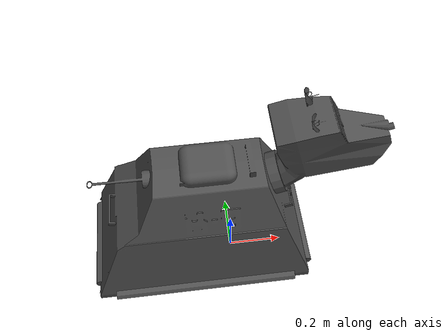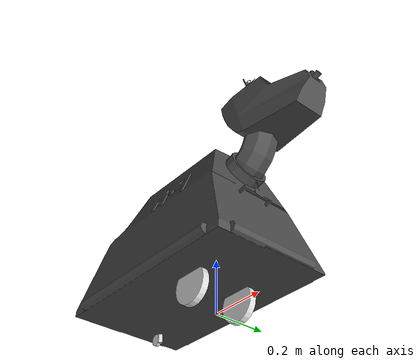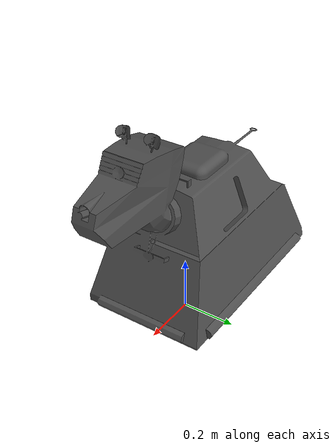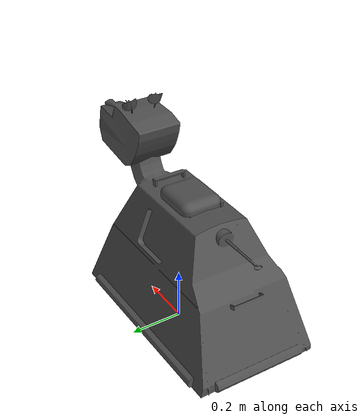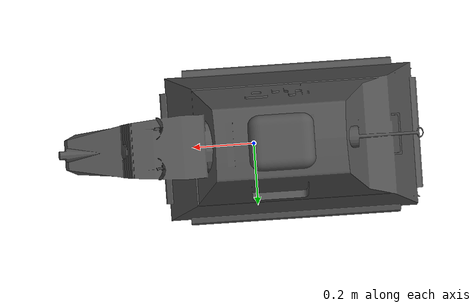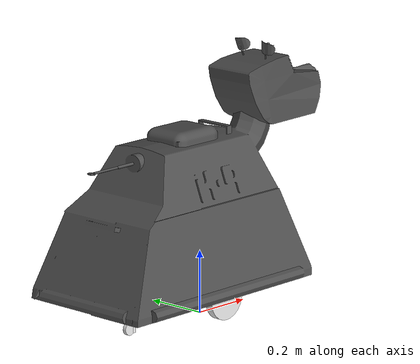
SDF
<?xml version='1.0' encoding='utf-8'?>
<sdf version="1.11">
  <model name="k9_robot">
    <link name="base_footprint">
      <inertial>
        <pose>-0.01793581616481775 8.5911424127219048e-21 0.2225694770206022 0 0 0</pose>
        <mass>25.239999999999998</mass>
        <inertia>
          <ixx>1.0186345969690971</ixx>
          <ixy>-3.8892101702392073e-21</ixy>
          <ixz>-0.018844349247226621</ixz>
          <iyy>2.4546026529912832</iyy>
          <iyz>3.3215504353186073e-20</iyz>
          <izz>2.048690056022187</izz>
        </inertia>
      </inertial>
      <collision name="base_footprint_fixed_joint_lump__base_link_collision">
        <pose>-0.11899999999999999 0 0.35438999999999998 0 0 0</pose>
        <geometry>
          <box>
            <size>0.89000000000000001 0.48999999999999999 0.48999999999999999</size>
          </box>
        </geometry>
      </collision>
      <collision name="base_footprint_fixed_joint_lump__base_link_collision_1">
        <pose>0.33600000000000002 0 0.68189 0 0 0</pose>
        <geometry>
          <box>
            <size>0.42999999999999999 0.17999999999999999 0.29499999999999998</size>
          </box>
        </geometry>
      </collision>
      <visual name="base_footprint_fixed_joint_lump__base_link_visual">
        <pose>-0.5 1.905 0.069389999999999993 0 0 3.1415926535897931</pose>
        <geometry>
          <mesh>
            <scale>0.01 0.01 0.01</scale>
            <uri>file:///home/hopkira/Documents/GitHub/k9-gazebo/src/k9_description/urdf/k9.stl</uri>
          </mesh>
        </geometry>
        <material>
          <diffuse>0.3125 0.3125 0.3125 1</diffuse>
          <ambient>0.3125 0.3125 0.3125 1</ambient>
        </material>
      </visual>
    </link>
    <joint name="caster_swivel_joint" type="revolute">
      <pose relative_to="base_footprint">-0.29799999999999999 0 0.017999999999999999 0 0 0</pose>
      <parent>base_footprint</parent>
      <child>caster_swivel_link</child>
      <axis>
        <xyz>0 0 1</xyz>
        <limit>
          <lower>-inf</lower>
          <upper>inf</upper>
        </limit>
        <dynamics>
          <damping>0.80000000000000004</damping>
          <friction>0</friction>
          <spring_reference>0</spring_reference>
          <spring_stiffness>0</spring_stiffness>
        </dynamics>
      </axis>
    </joint>
    <link name="caster_swivel_link">
      <pose relative_to="caster_swivel_joint">0 0 0 0 0 0</pose>
      <inertial>
        <pose>0 0 0 0 0 0</pose>
        <mass>0.14999999999999999</mass>
        <inertia>
          <ixx>1.365e-05</ixx>
          <ixy>0</ixy>
          <ixz>0</ixz>
          <iyy>1.365e-05</iyy>
          <iyz>0</iyz>
          <izz>4.7999999999999998e-06</izz>
        </inertia>
      </inertial>
      <collision name="caster_swivel_link_collision">
        <pose>0 0 0 0 0 0</pose>
        <geometry>
          <cylinder>
            <length>0.029999999999999999</length>
            <radius>0.0080000000000000002</radius>
          </cylinder>
        </geometry>
      </collision>
      <visual name="caster_swivel_link_visual">
        <pose>0 0 0 0 0 0</pose>
        <geometry>
          <cylinder>
            <length>0.029999999999999999</length>
            <radius>0.0080000000000000002</radius>
          </cylinder>
        </geometry>
        <material>
          <diffuse>0.875 0.875 0.875 1</diffuse>
          <ambient>0.875 0.875 0.875 1</ambient>
        </material>
      </visual>
    </link>
    <joint name="caster_wheel_joint" type="revolute">
      <pose relative_to="caster_swivel_link">-0.017999999999999999 0 0 0 0 0</pose>
      <parent>caster_swivel_link</parent>
      <child>caster_wheel_link</child>
      <axis>
        <xyz>0 1 0</xyz>
        <limit>
          <lower>-inf</lower>
          <upper>inf</upper>
        </limit>
        <dynamics>
          <damping>0.10000000000000001</damping>
          <friction>0</friction>
          <spring_reference>0</spring_reference>
          <spring_stiffness>0</spring_stiffness>
        </dynamics>
      </axis>
    </joint>
    <link name="caster_wheel_link">
      <pose relative_to="caster_wheel_joint">0 0 0 0 0 0</pose>
      <inertial>
        <pose>0 0 0 0 0 0</pose>
        <mass>0.10000000000000001</mass>
        <inertia>
          <ixx>1.1199999999999999e-05</ixx>
          <ixy>0</ixy>
          <ixz>0</ixz>
          <iyy>1.1199999999999999e-05</iyy>
          <iyz>0</iyz>
          <izz>2.0000000000000002e-05</izz>
        </inertia>
      </inertial>
      <collision name="caster_wheel_link_collision">
        <pose>0 0 0 1.5707963267948959 0 0</pose>
        <geometry>
          <cylinder>
            <length>0.012</length>
            <radius>0.02</radius>
          </cylinder>
        </geometry>
        <surface>
          <contact>
            <ode />
          </contact>
          <friction>
            <ode>
              <mu>0.3</mu>
              <mu2>0.15</mu2>
            </ode>
          </friction>
        </surface>
      </collision>
      <visual name="caster_wheel_link_visual">
        <pose>0 0 0 1.5707963267948959 0 0</pose>
        <geometry>
          <cylinder>
            <length>0.012</length>
            <radius>0.02</radius>
          </cylinder>
        </geometry>
        <material>
          <diffuse>0.875 0.875 0.875 1</diffuse>
          <ambient>0.875 0.875 0.875 1</ambient>
        </material>
      </visual>
    </link>
    <joint name="drivewhl_l_joint" type="revolute">
      <pose relative_to="base_footprint">0 0.1011 0.069389999999999993 0 0 0</pose>
      <parent>base_footprint</parent>
      <child>drivewhl_l_link</child>
      <axis>
        <xyz>0 1 0</xyz>
        <limit>
          <lower>-inf</lower>
          <upper>inf</upper>
        </limit>
        <dynamics>
          <damping>0.050000000000000003</damping>
          <friction>0</friction>
          <spring_reference>0</spring_reference>
          <spring_stiffness>0</spring_stiffness>
        </dynamics>
      </axis>
    </joint>
    <link name="drivewhl_l_link">
      <pose relative_to="drivewhl_l_joint">0 0 0 0 0 0</pose>
      <inertial>
        <pose>0 0 0 0 0 0</pose>
        <mass>1</mass>
        <inertia>
          <ixx>0.0012558263583333331</ixx>
          <ixy>0</ixy>
          <ixz>0</ixz>
          <iyy>0.0012558263583333331</iyy>
          <iyz>0</iyz>
          <izz>0.0024074860500000001</izz>
        </inertia>
      </inertial>
      <collision name="drivewhl_l_link_collision">
        <pose>0 0 0 1.5707963267948959 0 0</pose>
        <geometry>
          <cylinder>
            <length>0.025000000000000001</length>
            <radius>0.069389999999999993</radius>
          </cylinder>
        </geometry>
        <surface>
          <contact>
            <ode />
          </contact>
          <friction>
            <ode>
              <mu>1.1</mu>
              <mu2>0.9</mu2>
            </ode>
          </friction>
        </surface>
      </collision>
      <visual name="drivewhl_l_link_visual">
        <pose>0 0 0 1.5707963267948959 0 0</pose>
        <geometry>
          <cylinder>
            <length>0.025000000000000001</length>
            <radius>0.069389999999999993</radius>
          </cylinder>
        </geometry>
        <material>
          <diffuse>0.875 0.875 0.875 1</diffuse>
          <ambient>0.875 0.875 0.875 1</ambient>
        </material>
      </visual>
    </link>
    <joint name="drivewhl_r_joint" type="revolute">
      <pose relative_to="base_footprint">0 -0.1011 0.069389999999999993 0 0 0</pose>
      <parent>base_footprint</parent>
      <child>drivewhl_r_link</child>
      <axis>
        <xyz>0 1 0</xyz>
        <limit>
          <lower>-inf</lower>
          <upper>inf</upper>
        </limit>
        <dynamics>
          <damping>0.050000000000000003</damping>
          <friction>0</friction>
          <spring_reference>0</spring_reference>
          <spring_stiffness>0</spring_stiffness>
        </dynamics>
      </axis>
    </joint>
    <link name="drivewhl_r_link">
      <pose relative_to="drivewhl_r_joint">0 0 0 0 0 0</pose>
      <inertial>
        <pose>0 0 0 0 0 0</pose>
        <mass>1</mass>
        <inertia>
          <ixx>0.0012558263583333331</ixx>
          <ixy>0</ixy>
          <ixz>0</ixz>
          <iyy>0.0012558263583333331</iyy>
          <iyz>0</iyz>
          <izz>0.0024074860500000001</izz>
        </inertia>
      </inertial>
      <collision name="drivewhl_r_link_collision">
        <pose>0 0 0 1.5707963267948959 0 0</pose>
        <geometry>
          <cylinder>
            <length>0.025000000000000001</length>
            <radius>0.069389999999999993</radius>
          </cylinder>
        </geometry>
        <surface>
          <contact>
            <ode />
          </contact>
          <friction>
            <ode>
              <mu>1.1</mu>
              <mu2>0.9</mu2>
            </ode>
          </friction>
        </surface>
      </collision>
      <visual name="drivewhl_r_link_visual">
        <pose>0 0 0 1.5707963267948959 0 0</pose>
        <geometry>
          <cylinder>
            <length>0.025000000000000001</length>
            <radius>0.069389999999999993</radius>
          </cylinder>
        </geometry>
        <material>
          <diffuse>0.875 0.875 0.875 1</diffuse>
          <ambient>0.875 0.875 0.875 1</ambient>
        </material>
      </visual>
    </link>
    <plugin name="gz::sim::systems::DiffDrive" filename="gz-sim-diff-drive-system">
      <left_joint>drivewhl_l_joint</left_joint>
      <right_joint>drivewhl_r_joint</right_joint>
      <wheel_separation>0.2022</wheel_separation>
      <wheel_radius>0.06939</wheel_radius>
      <odom_publish_frequency>50</odom_publish_frequency>
      <topic>/cmd_vel</topic>
      <odom_topic>/odom</odom_topic>
      <tf_topic>/tf</tf_topic>
      <frame_id>odom</frame_id>
      <child_frame_id>base_footprint</child_frame_id>
    </plugin>
    <frame name="3dcam_joint" attached_to="base_link">
      <pose>0.20599999999999999 0 0.255 0 0 0</pose>
    </frame>
    <frame name="3dcam_link" attached_to="3dcam_joint">
      <pose>0 0 0 0 0 0</pose>
    </frame>
    <frame name="eyecam_joint" attached_to="base_link">
      <pose>0.36599999999999999 0 0.67000000000000004 0 0 0</pose>
    </frame>
    <frame name="eyecam_link" attached_to="eyecam_joint">
      <pose>0 0 0 0 0 0</pose>
    </frame>
    <frame name="l_ear_joint" attached_to="base_link">
      <pose>0.34999999999999998 0.044999999999999998 0.72499999999999998 0 0.65000000000000002 0</pose>
    </frame>
    <frame name="l_ear_link" attached_to="l_ear_joint">
      <pose>0 0 0 0 0 0</pose>
    </frame>
    <frame name="lidar_joint" attached_to="base_link">
      <pose>-0.112 0 0.56499999999999995 0 0 0</pose>
    </frame>
    <frame name="lidar_link" attached_to="lidar_joint">
      <pose>0 0 0 0 0 0</pose>
    </frame>
    <frame name="r_ear_joint" attached_to="base_link">
      <pose>0.34999999999999998 -0.044999999999999998 0.72499999999999998 0 0.65000000000000002 0</pose>
    </frame>
    <frame name="r_ear_link" attached_to="r_ear_joint">
      <pose>0 0 0 0 0 0</pose>
    </frame>
    <frame name="base_joint" attached_to="base_footprint">
      <pose>0 0 0.069389999999999993 0 0 0</pose>
    </frame>
    <frame name="base_link" attached_to="base_joint">
      <pose>0 0 0 0 0 0</pose>
    </frame>
  </model>
</sdf>
